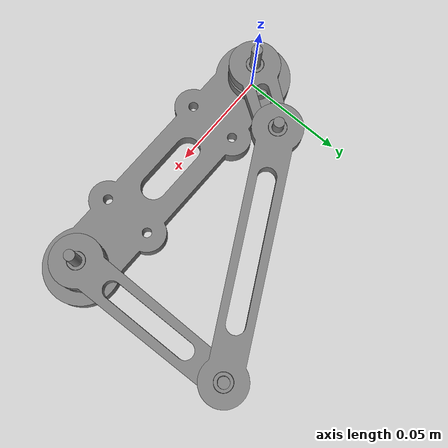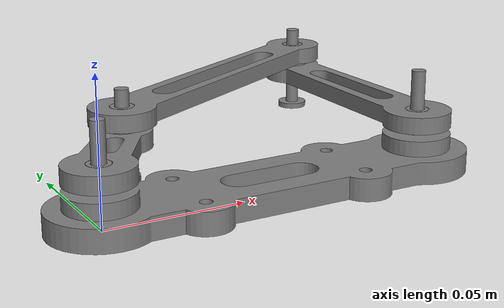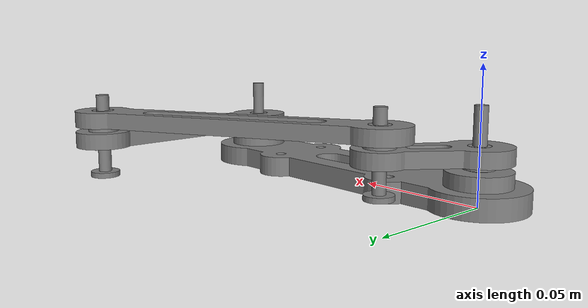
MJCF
<?xml version='1.0' encoding='utf-8'?>
<mujoco model="asm.ex3.four_bar"><compiler angle="radian" coordinate="local" /><asset><mesh name="mesh_part_ex3_base" file="meshes/mesh_part_ex3_base.obj" scale="0.001 0.001 0.001" /><mesh name="mesh_part_ex3_bushing" file="meshes/mesh_part_ex3_bushing.obj" scale="0.001 0.001 0.001" /><mesh name="mesh_part_ex3_coupler" file="meshes/mesh_part_ex3_coupler.obj" scale="0.001 0.001 0.001" /><mesh name="mesh_part_ex3_crank" file="meshes/mesh_part_ex3_crank.obj" scale="0.001 0.001 0.001" /><mesh name="mesh_part_ex3_pin" file="meshes/mesh_part_ex3_pin.obj" scale="0.001 0.001 0.001" /><mesh name="mesh_part_ex3_rocker" file="meshes/mesh_part_ex3_rocker.obj" scale="0.001 0.001 0.001" /><mesh name="mesh_part_ex3_spacer" file="meshes/mesh_part_ex3_spacer.obj" scale="0.001 0.001 0.001" /></asset><option gravity="0 0 0" timestep="0.002" /><worldbody><geom name="geom_cmp_ex3_base" type="mesh" mesh="mesh_part_ex3_base" /><body name="body_cmp_ex3_crank" pos="0 0 0.016" quat="0.887010833178 0 0 0.461748613235"><geom name="geom_cmp_ex3_crank" type="mesh" mesh="mesh_part_ex3_crank" /><joint name="joint_joint_ex3_ground_crank" type="hinge" pos="0 0 0.003" axis="0 0 1" damping="1e-4" /></body><body name="body_cmp_ex3_coupler" pos="0.0200751752723 0.0286703215501 0.024" quat="0.970735645989 0 0 0.240150589434"><geom name="geom_cmp_ex3_coupler" type="mesh" mesh="mesh_part_ex3_coupler" /><site name="site_closure_ex3_coupler_rocker_0" pos="0.11 -6.93889390391e-18 -0.005" quat="1 0 0 0" size="0.002" /><joint name="joint_joint_ex3_crank_coupler" type="hinge" pos="0 0 -0.005" axis="0 0 1" damping="1e-4" /></body><body name="body_cmp_ex3_rocker" pos="0.12 0 0.016" quat="0.695464179699 0 0 0.718560766224"><geom name="geom_cmp_ex3_rocker" type="mesh" mesh="mesh_part_ex3_rocker" /><site name="site_closure_ex3_coupler_rocker_1" pos="0.08 0 0.003" quat="1 0 0 0" size="0.002" /><joint name="joint_joint_ex3_ground_rocker" type="hinge" pos="0 0 0.003" axis="0 0 1" damping="1e-4" /></body><body name="body_cmp_ex3_pin_ground_left" pos="0 0 0.004" quat="1 0 0 0"><geom name="geom_cmp_ex3_pin_ground_left" type="mesh" mesh="mesh_part_ex3_pin" /><joint name="joint_joint_ex3_hardware_pin_ground_left" type="hinge" pos="0 0 0.015" axis="0 0 1" damping="1e-4" /></body><body name="body_cmp_ex3_pin_crank_coupler" pos="0.0200751752723 0.0286703215501 0.004" quat="1 0 0 0"><geom name="geom_cmp_ex3_pin_crank_coupler" type="mesh" mesh="mesh_part_ex3_pin" /><joint name="joint_joint_ex3_hardware_pin_crank_coupler" type="hinge" pos="0 0 0.015" axis="0 0 1" damping="1e-4" /></body><body name="body_cmp_ex3_pin_coupler_rocker" pos="0.117387268039 0.0799573238153 0.004" quat="1 0 0 0"><geom name="geom_cmp_ex3_pin_coupler_rocker" type="mesh" mesh="mesh_part_ex3_pin" /><joint name="joint_joint_ex3_hardware_pin_coupler_rocker" type="hinge" pos="0 0 0.015" axis="0 0 1" damping="1e-4" /></body><body name="body_cmp_ex3_pin_ground_right" pos="0.12 0 0.004" quat="1 0 0 0"><geom name="geom_cmp_ex3_pin_ground_right" type="mesh" mesh="mesh_part_ex3_pin" /><joint name="joint_joint_ex3_hardware_pin_ground_right" type="hinge" pos="0 0 0.015" axis="0 0 1" damping="1e-4" /></body><body name="body_cmp_ex3_bushing_base_left" pos="0 0 0.008" quat="1 0 0 0"><geom name="geom_cmp_ex3_bushing_base_left" type="mesh" mesh="mesh_part_ex3_bushing" /><joint name="joint_joint_ex3_hardware_bushing_base_left" type="hinge" pos="0 0 0.003" axis="0 0 1" damping="1e-4" /></body><body name="body_cmp_ex3_bushing_base_right" pos="0.12 0 0.008" quat="1 0 0 0"><geom name="geom_cmp_ex3_bushing_base_right" type="mesh" mesh="mesh_part_ex3_bushing" /><joint name="joint_joint_ex3_hardware_bushing_base_right" type="hinge" pos="0 0 0.003" axis="0 0 1" damping="1e-4" /></body><body name="body_cmp_ex3_bushing_crank_input" pos="0 0 0.016" quat="1 0 0 0"><geom name="geom_cmp_ex3_bushing_crank_input" type="mesh" mesh="mesh_part_ex3_bushing" /><joint name="joint_joint_ex3_hardware_bushing_crank_input" type="hinge" pos="0 0 0.003" axis="0 0 1" damping="1e-4" /></body><body name="body_cmp_ex3_bushing_crank_output" pos="0.0200751752723 0.0286703215501 0.016" quat="1 0 0 0"><geom name="geom_cmp_ex3_bushing_crank_output" type="mesh" mesh="mesh_part_ex3_bushing" /><joint name="joint_joint_ex3_hardware_bushing_crank_output" type="hinge" pos="0 0 0.003" axis="0 0 1" damping="1e-4" /></body><body name="body_cmp_ex3_bushing_coupler_input" pos="0.0200751752723 0.0286703215501 0.024" quat="1 0 0 0"><geom name="geom_cmp_ex3_bushing_coupler_input" type="mesh" mesh="mesh_part_ex3_bushing" /><joint name="joint_joint_ex3_hardware_bushing_coupler_input" type="hinge" pos="0 0 0.003" axis="0 0 1" damping="1e-4" /></body><body name="body_cmp_ex3_bushing_coupler_output" pos="0.117387268039 0.0799573238153 0.024" quat="1 0 0 0"><geom name="geom_cmp_ex3_bushing_coupler_output" type="mesh" mesh="mesh_part_ex3_bushing" /><joint name="joint_joint_ex3_hardware_bushing_coupler_output" type="hinge" pos="0 0 0.003" axis="0 0 1" damping="1e-4" /></body><body name="body_cmp_ex3_bushing_rocker_ground" pos="0.12 0 0.016" quat="1 0 0 0"><geom name="geom_cmp_ex3_bushing_rocker_ground" type="mesh" mesh="mesh_part_ex3_bushing" /><joint name="joint_joint_ex3_hardware_bushing_rocker_ground" type="hinge" pos="0 0 0.003" axis="0 0 1" damping="1e-4" /></body><body name="body_cmp_ex3_bushing_rocker_output" pos="0.117387268039 0.0799573238153 0.016" quat="1 0 0 0"><geom name="geom_cmp_ex3_bushing_rocker_output" type="mesh" mesh="mesh_part_ex3_bushing" /><joint name="joint_joint_ex3_hardware_bushing_rocker_output" type="hinge" pos="0 0 0.003" axis="0 0 1" damping="1e-4" /></body><body name="body_cmp_ex3_spacer_ground_left" pos="0 0 0.014" quat="1 0 0 0"><geom name="geom_cmp_ex3_spacer_ground_left" type="mesh" mesh="mesh_part_ex3_spacer" /><joint name="joint_joint_ex3_hardware_spacer_ground_left" type="hinge" pos="0 0 0.001" axis="0 0 1" damping="1e-4" /></body><body name="body_cmp_ex3_spacer_ground_right" pos="0.12 0 0.014" quat="1 0 0 0"><geom name="geom_cmp_ex3_spacer_ground_right" type="mesh" mesh="mesh_part_ex3_spacer" /><joint name="joint_joint_ex3_hardware_spacer_ground_right" type="hinge" pos="0 0 0.001" axis="0 0 1" damping="1e-4" /></body><body name="body_cmp_ex3_spacer_crank_coupler" pos="0.0200751752723 0.0286703215501 0.022" quat="1 0 0 0"><geom name="geom_cmp_ex3_spacer_crank_coupler" type="mesh" mesh="mesh_part_ex3_spacer" /><joint name="joint_joint_ex3_hardware_spacer_crank_coupler" type="hinge" pos="0 0 0.001" axis="0 0 1" damping="1e-4" /></body><body name="body_cmp_ex3_spacer_coupler_rocker" pos="0.117387268039 0.0799573238153 0.022" quat="1 0 0 0"><geom name="geom_cmp_ex3_spacer_coupler_rocker" type="mesh" mesh="mesh_part_ex3_spacer" /><joint name="joint_joint_ex3_hardware_spacer_coupler_rocker" type="hinge" pos="0 0 0.001" axis="0 0 1" damping="1e-4" /></body></worldbody><equality><connect name="eq_closure_ex3_coupler_rocker" site1="site_closure_ex3_coupler_rocker_0" site2="site_closure_ex3_coupler_rocker_1" /></equality></mujoco>
